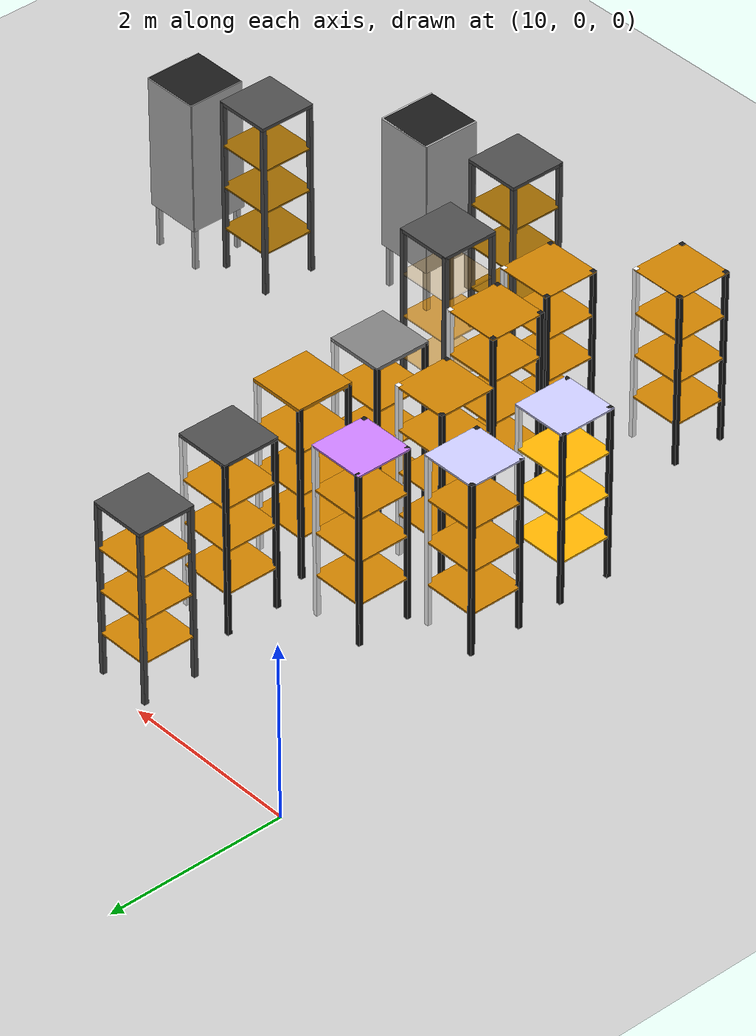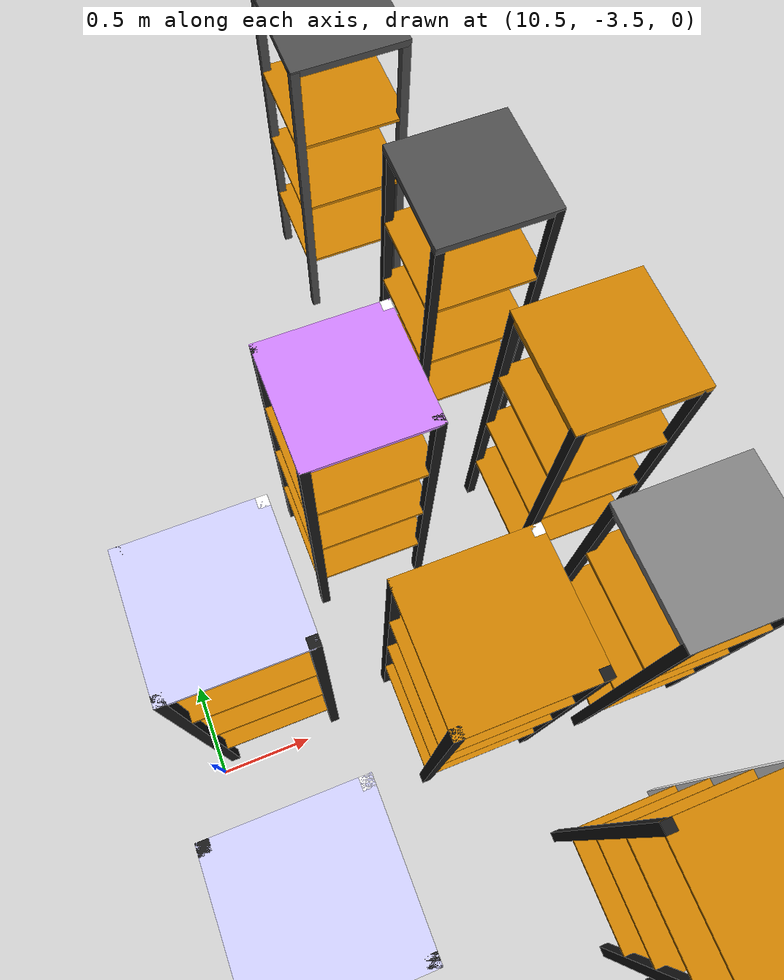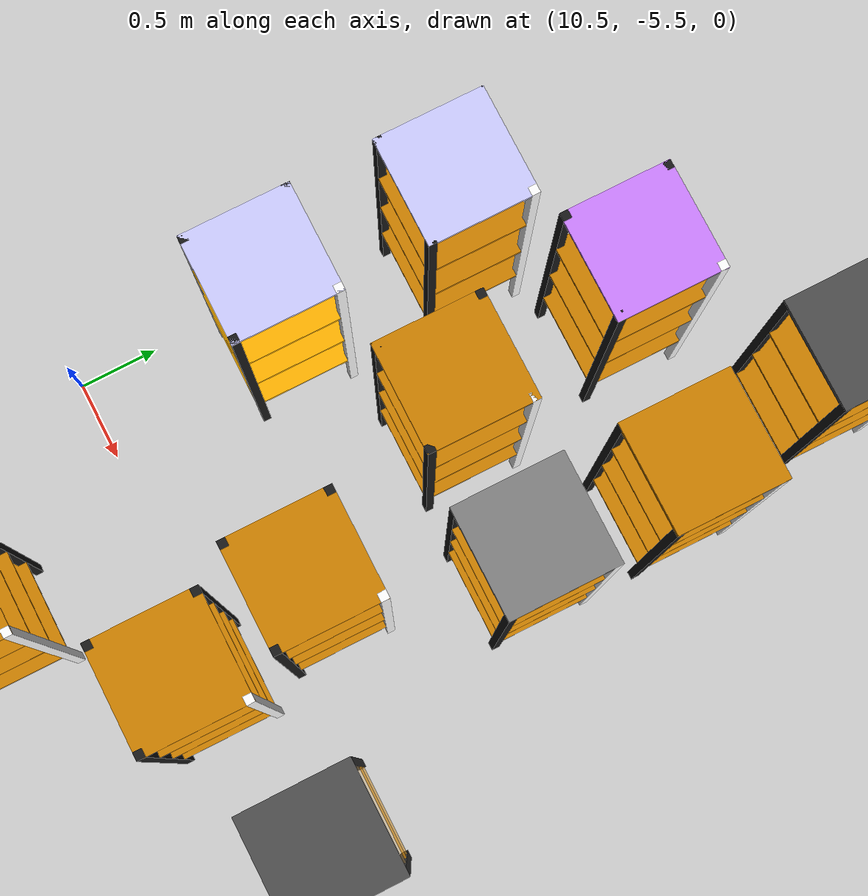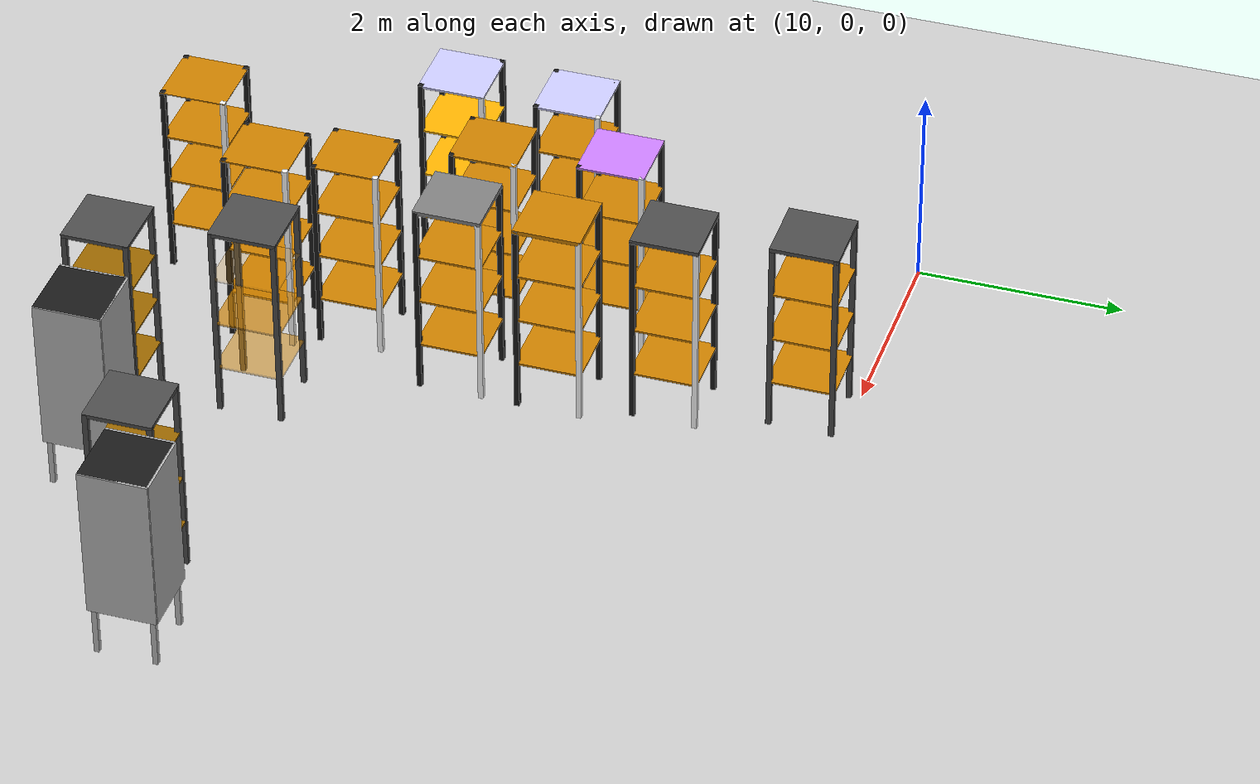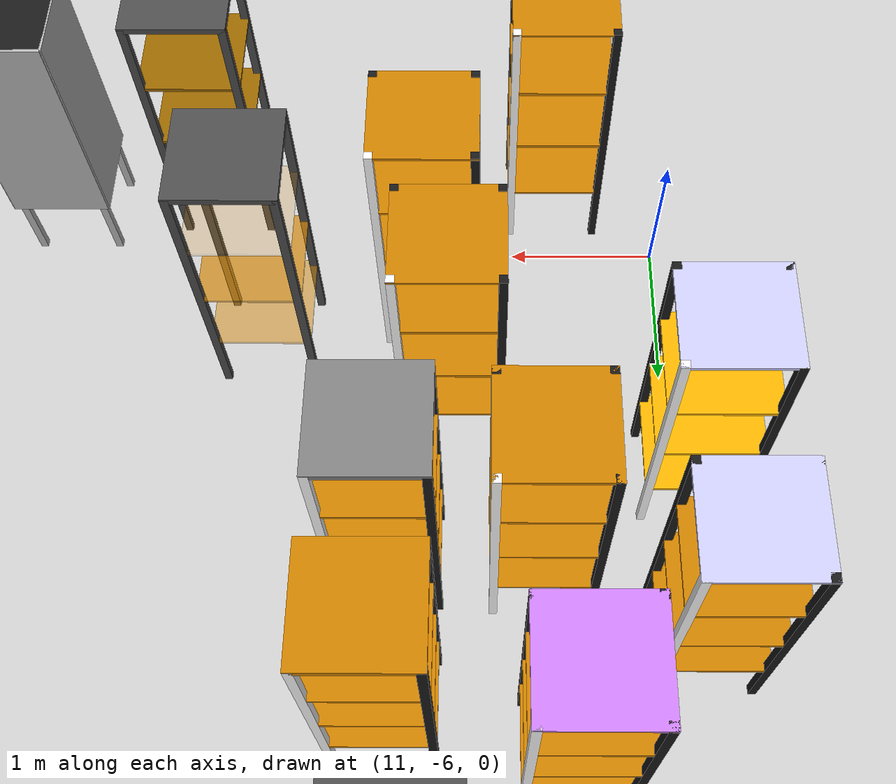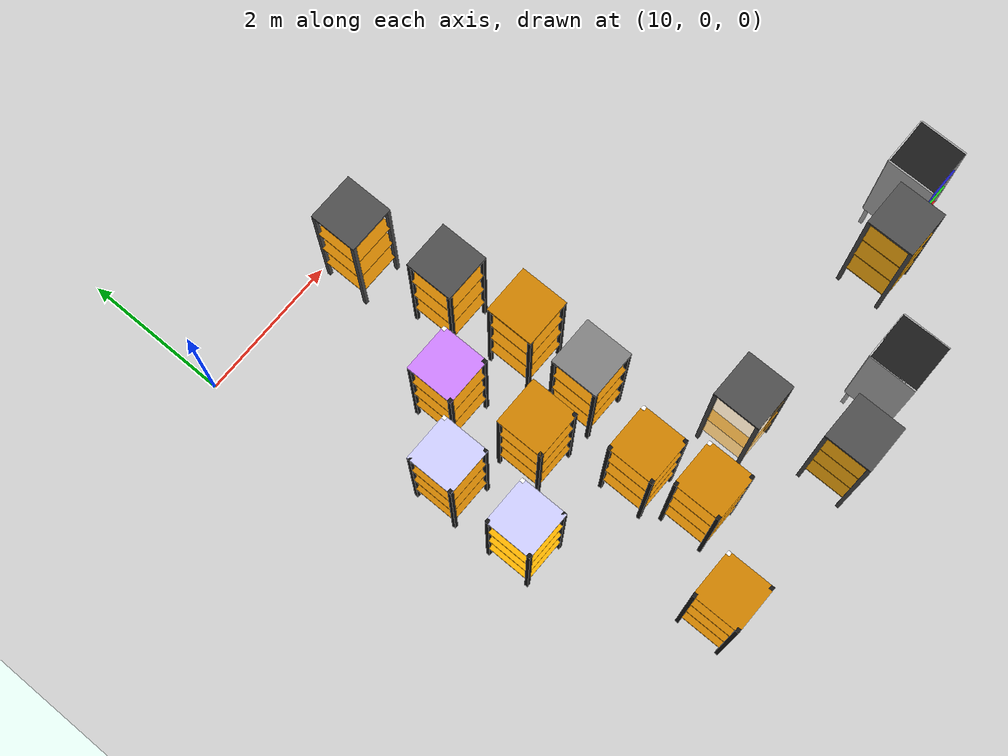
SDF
<sdf version="1.6">
 <world name="default">
  <model name="ground_plane">
   <static>1</static>
   <link name="link">
    <collision name="collision">
     <geometry><plane><normal>0 0 1</normal><size>50 50</size></plane></geometry>
     <surface><friction><ode><mu>100</mu><mu2>50</mu2></ode></friction></surface>
    </collision>
    <visual name="visual">
     <cast_shadows>0</cast_shadows>
     <geometry><plane><normal>0 0 1</normal><size>100 100</size></plane></geometry>
     <material>
      <script><uri>file://media/materials/scripts/gazebo.material</uri><name>Gazebo/Grey</name></script>
     </material>
    </visual>
    <velocity_decay><linear>0</linear><angular>0</angular></velocity_decay>
   </link>
  </model>
  <model name="warehouse_shelf_56">
   <static>1</static>
   <pose>10.889 -4.26653 0 0 -0 0</pose>
   <link name="main_block">
    <pose>0 0 1.25 0 -0 0</pose>
    <collision name="collision"><geometry><box><size>0.65 0.65 1.5</size></box></geometry></collision>
   </link>
   <link name="leg_1">
    <pose>0.3 0.3 1 0 -0 0</pose>
    <collision name="collision"><geometry><box><size>0.05 0.05 2</size></box></geometry></collision>
    <visual name="visual">
     <geometry><box><size>0.05 0.05 2</size></box></geometry>
     <material><ambient>0.1 0.1 0.1 1</ambient><diffuse>1 1 1 1</diffuse></material>
    </visual>
   </link>
   <link name="leg_2">
    <pose>-0.3 0.3 1 0 -0 0</pose>
    <collision name="collision"><geometry><box><size>0.05 0.05 2</size></box></geometry></collision>
    <visual name="visual">
     <geometry><box><size>0.05 0.05 2</size></box></geometry>
     <material><ambient>0.1 0.1 0.1 1</ambient></material>
    </visual>
   </link>
   <link name="leg_3">
    <pose>-0.3 -0.3 1 0 -0 0</pose>
    <collision name="collision"><geometry><box><size>0.05 0.05 2</size></box></geometry></collision>
    <visual name="visual">
     <geometry><box><size>0.05 0.05 2</size></box></geometry>
     <material><ambient>0.1 0.1 0.1 1</ambient></material>
    </visual>
   </link>
   <link name="leg_4">
    <pose>0.3 -0.3 1 0 -0 0</pose>
    <collision name="collision"><geometry><box><size>0.05 0.05 2</size></box></geometry></collision>
    <visual name="visual">
     <geometry><box><size>0.05 0.05 2</size></box></geometry>
     <material><ambient>0.1 0.1 0.1 1</ambient></material>
    </visual>
   </link>
   <link name="shelf_0">
    <pose>0 0 0.49 0 -0 0</pose>
    <visual name="visual">
     <geometry><box><size>0.649 0.649 0.02</size></box></geometry>
     <material><ambient>1 0.7 0 1</ambient><diffuse>1 0.7 0 1</diffuse></material>
    </visual>
   </link>
   <link name="shelf_1">
    <pose>0 0 0.99 0 -0 0</pose>
    <visual name="visual">
     <geometry><box><size>0.649 0.649 0.02</size></box></geometry>
     <material><ambient>1 0.7 0 1</ambient><diffuse>1 0.7 0 1</diffuse></material>
    </visual>
   </link>
   <link name="shelf_2">
    <pose>0 0 1.49 0 -0 0</pose>
    <visual name="visual">
     <geometry><box><size>0.649 0.649 0.02</size></box></geometry>
     <material><ambient>1 0.7 0 1</ambient><diffuse>1 0.7 0 1</diffuse></material>
    </visual>
   </link>
   <link name="shelf_top">
    <pose>0 0 1.99 0 -0 0</pose>
    <visual name="visual">
     <geometry><box><size>0.65 0.65 0.02</size></box></geometry>
     <material><ambient>0.8 0.8 1 1</ambient><diffuse>0.8 0.8 1 1</diffuse></material>
    </visual>
   </link>
  </model>
  <model name="warehouse_shelf_61">
   <static>1</static>
   <pose>10.8797 -3.13327 0 0 -0 0</pose>
   <link name="main_block">
    <pose>0 0 1.25 0 -0 0</pose>
    <collision name="collision"><geometry><box><size>0.65 0.65 1.5</size></box></geometry></collision>
   </link>
   <link name="leg_1">
    <pose>0.3 0.3 1 0 -0 0</pose>
    <collision name="collision"><geometry><box><size>0.05 0.05 2</size></box></geometry></collision>
    <visual name="visual">
     <geometry><box><size>0.05 0.05 2</size></box></geometry>
     <material><ambient>0.1 0.1 0.1 1</ambient><diffuse>1 1 1 1</diffuse></material>
    </visual>
   </link>
   <link name="leg_2">
    <pose>-0.3 0.3 1 0 -0 0</pose>
    <collision name="collision"><geometry><box><size>0.05 0.05 2</size></box></geometry></collision>
    <visual name="visual">
     <geometry><box><size>0.05 0.05 2</size></box></geometry>
     <material><ambient>0.1 0.1 0.1 1</ambient></material>
    </visual>
   </link>
   <link name="leg_3">
    <pose>-0.3 -0.3 1 0 -0 0</pose>
    <collision name="collision"><geometry><box><size>0.05 0.05 2</size></box></geometry></collision>
    <visual name="visual">
     <geometry><box><size>0.05 0.05 2</size></box></geometry>
     <material><ambient>0.1 0.1 0.1 1</ambient></material>
    </visual>
   </link>
   <link name="leg_4">
    <pose>0.3 -0.3 1 0 -0 0</pose>
    <collision name="collision"><geometry><box><size>0.05 0.05 2</size></box></geometry></collision>
    <visual name="visual">
     <geometry><box><size>0.05 0.05 2</size></box></geometry>
     <material><ambient>0.1 0.1 0.1 1</ambient></material>
    </visual>
   </link>
   <link name="shelf_0">
    <pose>0 0 0.49 0 -0 0</pose>
    <visual name="visual">
     <geometry><box><size>0.649 0.649 0.02</size></box></geometry>
     <material><ambient>0.2 0.05 0 1</ambient><diffuse>0.8 0.5 0 1</diffuse></material>
    </visual>
   </link>
   <link name="shelf_1">
    <pose>0 0 0.99 0 -0 0</pose>
    <visual name="visual">
     <geometry><box><size>0.649 0.649 0.02</size></box></geometry>
     <material><ambient>0.2 0.05 0 1</ambient><diffuse>0.8 0.5 0 1</diffuse></material>
    </visual>
   </link>
   <link name="shelf_2">
    <pose>0 0 1.49 0 -0 0</pose>
    <visual name="visual">
     <geometry><box><size>0.649 0.649 0.02</size></box></geometry>
     <material><ambient>0.2 0.05 0 1</ambient><diffuse>0.8 0.5 0 1</diffuse></material>
    </visual>
   </link>
   <link name="shelf_top">
    <pose>0 0 1.99 0 -0 0</pose>
    <visual name="visual">
     <geometry><box><size>0.65 0.65 0.02</size></box></geometry>
     <material><ambient>0.8 0.8 1 1</ambient><diffuse>0.8 0.8 1 1</diffuse></material>
    </visual>
   </link>
  </model>
  <model name="warehouse_shelf_62">
   <static>1</static>
   <pose>11.6756 -2.45291 0 0 -0 0</pose>
   <link name="main_block">
    <pose>0 0 1.25 0 -0 0</pose>
    <collision name="collision"><geometry><box><size>0.65 0.65 1.5</size></box></geometry></collision>
   </link>
   <link name="leg_1">
    <pose>0.3 0.3 1 0 -0 0</pose>
    <collision name="collision"><geometry><box><size>0.05 0.05 2</size></box></geometry></collision>
    <visual name="visual">
     <geometry><box><size>0.05 0.05 2</size></box></geometry>
     <material><ambient>0.1 0.1 0.1 1</ambient><diffuse>1 1 1 1</diffuse></material>
    </visual>
   </link>
   <link name="leg_2">
    <pose>-0.3 0.3 1 0 -0 0</pose>
    <collision name="collision"><geometry><box><size>0.05 0.05 2</size></box></geometry></collision>
    <visual name="visual">
     <geometry><box><size>0.05 0.05 2</size></box></geometry>
     <material><ambient>0.1 0.1 0.1 1</ambient></material>
    </visual>
   </link>
   <link name="leg_3">
    <pose>-0.3 -0.3 1 0 -0 0</pose>
    <collision name="collision"><geometry><box><size>0.05 0.05 2</size></box></geometry></collision>
    <visual name="visual">
     <geometry><box><size>0.05 0.05 2</size></box></geometry>
     <material><ambient>0.1 0.1 0.1 1</ambient></material>
    </visual>
   </link>
   <link name="leg_4">
    <pose>0.3 -0.3 1 0 -0 0</pose>
    <collision name="collision"><geometry><box><size>0.05 0.05 2</size></box></geometry></collision>
    <visual name="visual">
     <geometry><box><size>0.05 0.05 2</size></box></geometry>
     <material><ambient>0.1 0.1 0.1 1</ambient></material>
    </visual>
   </link>
   <link name="shelf_0">
    <pose>0 0 0.49 0 -0 0</pose>
    <visual name="visual">
     <geometry><box><size>0.649 0.649 0.02</size></box></geometry>
     <material><ambient>0.2 0.05 0 1</ambient><diffuse>0.8 0.5 0 1</diffuse></material>
    </visual>
   </link>
   <link name="shelf_1">
    <pose>0 0 0.99 0 -0 0</pose>
    <visual name="visual">
     <geometry><box><size>0.649 0.649 0.02</size></box></geometry>
     <material><ambient>0.2 0.05 0 1</ambient><diffuse>0.8 0.5 0 1</diffuse></material>
    </visual>
   </link>
   <link name="shelf_2">
    <pose>0 0 1.49 0 -0 0</pose>
    <visual name="visual">
     <geometry><box><size>0.649 0.649 0.02</size></box></geometry>
     <material><ambient>0.2 0.05 0 1</ambient><diffuse>0.8 0.5 0 1</diffuse></material>
    </visual>
   </link>
   <link name="shelf_top">
    <pose>0 0 1.99 0 -0 0</pose>
    <visual name="visual">
     <geometry><box><size>0.65 0.65 0.02</size></box></geometry>
     <material><ambient>0.2 0.05 1 1</ambient><diffuse>0.8 0.5 1 1</diffuse></material>
    </visual>
   </link>
  </model>
  <model name="warehouse_shelf_63">
   <static>1</static>
   <pose>11.8474 -3.63149 0 0 -0 0</pose>
   <link name="main_block">
    <pose>0 0 1.25 0 -0 0</pose>
    <collision name="collision"><geometry><box><size>0.65 0.65 1.5</size></box></geometry></collision>
   </link>
   <link name="leg_1">
    <pose>0.3 0.3 1 0 -0 0</pose>
    <collision name="collision"><geometry><box><size>0.05 0.05 2</size></box></geometry></collision>
    <visual name="visual">
     <geometry><box><size>0.05 0.05 2</size></box></geometry>
     <material><ambient>0.1 0.1 0.1 1</ambient><diffuse>1 1 1 1</diffuse></material>
    </visual>
   </link>
   <link name="leg_2">
    <pose>-0.3 0.3 1 0 -0 0</pose>
    <collision name="collision"><geometry><box><size>0.05 0.05 2</size></box></geometry></collision>
    <visual name="visual">
     <geometry><box><size>0.05 0.05 2</size></box></geometry>
     <material><ambient>0.1 0.1 0.1 1</ambient></material>
    </visual>
   </link>
   <link name="leg_3">
    <pose>-0.3 -0.3 1 0 -0 0</pose>
    <collision name="collision"><geometry><box><size>0.05 0.05 2</size></box></geometry></collision>
    <visual name="visual">
     <geometry><box><size>0.05 0.05 2</size></box></geometry>
     <material><ambient>0.1 0.1 0.1 1</ambient></material>
    </visual>
   </link>
   <link name="leg_4">
    <pose>0.3 -0.3 1 0 -0 0</pose>
    <collision name="collision"><geometry><box><size>0.05 0.05 2</size></box></geometry></collision>
    <visual name="visual">
     <geometry><box><size>0.05 0.05 2</size></box></geometry>
     <material><ambient>0.1 0.1 0.1 1</ambient></material>
    </visual>
   </link>
   <link name="shelf_0">
    <pose>0 0 0.49 0 -0 0</pose>
    <visual name="visual">
     <geometry><box><size>0.649 0.649 0.02</size></box></geometry>
     <material><ambient>0.2 0.05 0 1</ambient><diffuse>0.8 0.5 0 1</diffuse></material>
    </visual>
   </link>
   <link name="shelf_1">
    <pose>0 0 0.99 0 -0 0</pose>
    <visual name="visual">
     <geometry><box><size>0.649 0.649 0.02</size></box></geometry>
     <material><ambient>0.2 0.05 0 1</ambient><diffuse>0.8 0.5 0 1</diffuse></material>
    </visual>
   </link>
   <link name="shelf_2">
    <pose>0 0 1.49 0 -0 0</pose>
    <visual name="visual">
     <geometry><box><size>0.649 0.649 0.02</size></box></geometry>
     <material><ambient>0.2 0.05 0 1</ambient><diffuse>0.8 0.5 0 1</diffuse></material>
    </visual>
   </link>
   <link name="shelf_top">
    <pose>0 0 1.99 0 -0 0</pose>
    <visual name="visual">
     <geometry><box><size>0.65 0.65 0.02</size></box></geometry>
     <material><ambient>0.2 0.05 0 1</ambient><diffuse>0.8 0.5 0 1</diffuse></material>
    </visual>
   </link>
  </model>
  <model name="warehouse_shelf_64">
   <static>1</static>
   <pose>12.4062 -4.77712 0 0 -0 0</pose>
   <link name="main_block">
    <pose>0 0 1.25 0 -0 0</pose>
    <collision name="collision"><geometry><box><size>0.65 0.65 1.5</size></box></geometry></collision>
   </link>
   <link name="leg_1">
    <pose>0.3 0.3 1 0 -0 0</pose>
    <collision name="collision"><geometry><box><size>0.05 0.05 2</size></box></geometry></collision>
    <visual name="visual">
     <geometry><box><size>0.05 0.05 2</size></box></geometry>
     <material><ambient>0.1 0.1 0.1 1</ambient><diffuse>1 1 1 1</diffuse></material>
    </visual>
   </link>
   <link name="leg_2">
    <pose>-0.3 0.3 1 0 -0 0</pose>
    <collision name="collision"><geometry><box><size>0.05 0.05 2</size></box></geometry></collision>
    <visual name="visual">
     <geometry><box><size>0.05 0.05 2</size></box></geometry>
     <material><ambient>0.1 0.1 0.1 1</ambient></material>
    </visual>
   </link>
   <link name="leg_3">
    <pose>-0.3 -0.3 1 0 -0 0</pose>
    <collision name="collision"><geometry><box><size>0.05 0.05 2</size></box></geometry></collision>
    <visual name="visual">
     <geometry><box><size>0.05 0.05 2</size></box></geometry>
     <material><ambient>0.1 0.1 0.1 1</ambient></material>
    </visual>
   </link>
   <link name="leg_4">
    <pose>0.3 -0.3 1 0 -0 0</pose>
    <collision name="collision"><geometry><box><size>0.05 0.05 2</size></box></geometry></collision>
    <visual name="visual">
     <geometry><box><size>0.05 0.05 2</size></box></geometry>
     <material><ambient>0.1 0.1 0.1 1</ambient></material>
    </visual>
   </link>
   <link name="shelf_0">
    <pose>0 0 0.49 0 -0 0</pose>
    <visual name="visual">
     <geometry><box><size>0.649 0.649 0.02</size></box></geometry>
     <material><ambient>0.2 0.05 0 1</ambient><diffuse>0.8 0.5 0 1</diffuse></material>
    </visual>
   </link>
   <link name="shelf_1">
    <pose>0 0 0.99 0 -0 0</pose>
    <visual name="visual">
     <geometry><box><size>0.649 0.649 0.02</size></box></geometry>
     <material><ambient>0.2 0.05 0 1</ambient><diffuse>0.8 0.5 0 1</diffuse></material>
    </visual>
   </link>
   <link name="shelf_2">
    <pose>0 0 1.49 0 -0 0</pose>
    <visual name="visual">
     <geometry><box><size>0.649 0.649 0.02</size></box></geometry>
     <material><ambient>0.2 0.05 0 1</ambient><diffuse>0.8 0.5 0 1</diffuse></material>
    </visual>
   </link>
   <link name="shelf_top">
    <pose>0 0 1.99 0 -0 0</pose>
    <visual name="visual">
     <geometry><box><size>0.65 0.65 0.015</size></box></geometry>
     <material><ambient>0.2 0.05 0 1</ambient><diffuse>0.8 0.5 0 1</diffuse></material>
    </visual>
   </link>
  </model>
  <model name="warehouse_shelf_65">
   <static>1</static>
   <pose>12.5605 -5.60007 0 0 -0 0</pose>
   <link name="main_block">
    <pose>0 0 1.25 0 -0 0</pose>
    <collision name="collision"><geometry><box><size>0.65 0.65 1.5</size></box></geometry></collision>
   </link>
   <link name="leg_1">
    <pose>0.3 0.3 1 0 -0 0</pose>
    <collision name="collision"><geometry><box><size>0.05 0.05 2</size></box></geometry></collision>
    <visual name="visual">
     <geometry><box><size>0.05 0.05 2</size></box></geometry>
     <material><ambient>0.1 0.1 0.1 1</ambient><diffuse>1 1 1 1</diffuse></material>
    </visual>
   </link>
   <link name="leg_2">
    <pose>-0.3 0.3 1 0 -0 0</pose>
    <collision name="collision"><geometry><box><size>0.05 0.05 2</size></box></geometry></collision>
    <visual name="visual">
     <geometry><box><size>0.05 0.05 2</size></box></geometry>
     <material><ambient>0.1 0.1 0.1 1</ambient></material>
    </visual>
   </link>
   <link name="leg_3">
    <pose>-0.3 -0.3 1 0 -0 0</pose>
    <collision name="collision"><geometry><box><size>0.05 0.05 2</size></box></geometry></collision>
    <visual name="visual">
     <geometry><box><size>0.05 0.05 2</size></box></geometry>
     <material><ambient>0.1 0.1 0.1 1</ambient></material>
    </visual>
   </link>
   <link name="leg_4">
    <pose>0.3 -0.3 1 0 -0 0</pose>
    <collision name="collision"><geometry><box><size>0.05 0.05 2</size></box></geometry></collision>
    <visual name="visual">
     <geometry><box><size>0.05 0.05 2</size></box></geometry>
     <material><ambient>0.1 0.1 0.1 1</ambient></material>
    </visual>
   </link>
   <link name="shelf_0">
    <pose>0 0 0.49 0 -0 0</pose>
    <visual name="visual">
     <geometry><box><size>0.649 0.649 0.02</size></box></geometry>
     <material><ambient>0.2 0.05 0 1</ambient><diffuse>0.8 0.5 0 1</diffuse></material>
    </visual>
   </link>
   <link name="shelf_1">
    <pose>0 0 0.99 0 -0 0</pose>
    <visual name="visual">
     <geometry><box><size>0.649 0.649 0.02</size></box></geometry>
     <material><ambient>0.2 0.05 0 1</ambient><diffuse>0.8 0.5 0 1</diffuse></material>
    </visual>
   </link>
   <link name="shelf_2">
    <pose>0 0 1.49 0 -0 0</pose>
    <visual name="visual">
     <geometry><box><size>0.649 0.649 0.02</size></box></geometry>
     <material><ambient>0.2 0.05 0 1</ambient><diffuse>0.8 0.5 0 1</diffuse></material>
    </visual>
   </link>
   <link name="shelf_top">
    <pose>0 0 1.99 0 -0 0</pose>
    <visual name="visual">
     <geometry><box><size>0.65 0.65 0.015</size></box></geometry>
     <material><ambient>0.2 0.05 0 1</ambient><diffuse>0.8 0.5 0 1</diffuse></material>
    </visual>
   </link>
  </model>
  <model name="warehouse_shelf_66">
   <static>1</static>
   <pose>11.7167 -6.53004 0 0 -0 0</pose>
   <link name="main_block">
    <pose>0 0 1.25 0 -0 0</pose>
    <collision name="collision"><geometry><box><size>0.65 0.65 1.5</size></box></geometry></collision>
   </link>
   <link name="leg_1">
    <pose>0.3 0.3 1 0 -0 0</pose>
    <collision name="collision"><geometry><box><size>0.05 0.05 2</size></box></geometry></collision>
    <visual name="visual">
     <geometry><box><size>0.05 0.05 2</size></box></geometry>
     <material><ambient>0.1 0.1 0.1 1</ambient><diffuse>1 1 1 1</diffuse></material>
    </visual>
   </link>
   <link name="leg_2">
    <pose>-0.3 0.3 1 0 -0 0</pose>
    <collision name="collision"><geometry><box><size>0.05 0.05 2</size></box></geometry></collision>
    <visual name="visual">
     <geometry><box><size>0.05 0.05 2</size></box></geometry>
     <material><ambient>0.1 0.1 0.1 1</ambient></material>
    </visual>
   </link>
   <link name="leg_3">
    <pose>-0.3 -0.3 1 0 -0 0</pose>
    <collision name="collision"><geometry><box><size>0.05 0.05 2</size></box></geometry></collision>
    <visual name="visual">
     <geometry><box><size>0.05 0.05 2</size></box></geometry>
     <material><ambient>0.1 0.1 0.1 1</ambient></material>
    </visual>
   </link>
   <link name="leg_4">
    <pose>0.3 -0.3 1 0 -0 0</pose>
    <collision name="collision"><geometry><box><size>0.05 0.05 2</size></box></geometry></collision>
    <visual name="visual">
     <geometry><box><size>0.05 0.05 2</size></box></geometry>
     <material><ambient>0.1 0.1 0.1 1</ambient></material>
    </visual>
   </link>
   <link name="shelf_0">
    <pose>0 0 0.49 0 -0 0</pose>
    <visual name="visual">
     <geometry><box><size>0.649 0.649 0.02</size></box></geometry>
     <material><ambient>0.2 0.05 0 1</ambient><diffuse>0.8 0.5 0 1</diffuse></material>
    </visual>
   </link>
   <link name="shelf_1">
    <pose>0 0 0.99 0 -0 0</pose>
    <visual name="visual">
     <geometry><box><size>0.649 0.649 0.02</size></box></geometry>
     <material><ambient>0.2 0.05 0 1</ambient><diffuse>0.8 0.5 0 1</diffuse></material>
    </visual>
   </link>
   <link name="shelf_2">
    <pose>0 0 1.49 0 -0 0</pose>
    <visual name="visual">
     <geometry><box><size>0.649 0.649 0.02</size></box></geometry>
     <material><ambient>0.2 0.05 0 1</ambient><diffuse>0.8 0.5 0 1</diffuse></material>
    </visual>
   </link>
   <link name="shelf_top">
    <pose>0 0 1.99 0 -0 0</pose>
    <visual name="visual">
     <geometry><box><size>0.65 0.65 0.01</size></box></geometry>
     <material><ambient>0.2 0.05 0 1</ambient><diffuse>0.8 0.5 0 1</diffuse></material>
    </visual>
   </link>
  </model>
  <model name="warehouse_shelf_67">
   <static>1</static>
   <pose>12.7851 -2.70222 0 0 -0 0</pose>
   <link name="main_block">
    <pose>0 0 1.25 0 -0 0</pose>
    <collision name="collision"><geometry><box><size>0.65 0.65 1.5</size></box></geometry></collision>
   </link>
   <link name="leg_1">
    <pose>0.3 0.3 1 0 -0 0</pose>
    <collision name="collision"><geometry><box><size>0.05 0.05 2</size></box></geometry></collision>
    <visual name="visual">
     <geometry><box><size>0.05 0.05 2</size></box></geometry>
     <material><ambient>0.1 0.1 0.1 1</ambient><diffuse>1 1 1 1</diffuse></material>
    </visual>
   </link>
   <link name="leg_2">
    <pose>-0.3 0.3 1 0 -0 0</pose>
    <collision name="collision"><geometry><box><size>0.05 0.05 2</size></box></geometry></collision>
    <visual name="visual">
     <geometry><box><size>0.05 0.05 2</size></box></geometry>
     <material><ambient>0.1 0.1 0.1 1</ambient></material>
    </visual>
   </link>
   <link name="leg_3">
    <pose>-0.3 -0.3 1 0 -0 0</pose>
    <collision name="collision"><geometry><box><size>0.05 0.05 2</size></box></geometry></collision>
    <visual name="visual">
     <geometry><box><size>0.05 0.05 2</size></box></geometry>
     <material><ambient>0.1 0.1 0.1 1</ambient></material>
    </visual>
   </link>
   <link name="leg_4">
    <pose>0.3 -0.3 1 0 -0 0</pose>
    <collision name="collision"><geometry><box><size>0.05 0.05 2</size></box></geometry></collision>
    <visual name="visual">
     <geometry><box><size>0.05 0.05 2</size></box></geometry>
     <material><ambient>0.1 0.1 0.1 1</ambient></material>
    </visual>
   </link>
   <link name="shelf_0">
    <pose>0 0 0.49 0 -0 0</pose>
    <visual name="visual">
     <geometry><box><size>0.649 0.649 0.02</size></box></geometry>
     <material><ambient>0.2 0.05 0 1</ambient><diffuse>0.8 0.5 0 1</diffuse></material>
    </visual>
   </link>
   <link name="shelf_1">
    <pose>0 0 0.99 0 -0 0</pose>
    <visual name="visual">
     <geometry><box><size>0.649 0.649 0.02</size></box></geometry>
     <material><ambient>0.2 0.05 0 1</ambient><diffuse>0.8 0.5 0 1</diffuse></material>
    </visual>
   </link>
   <link name="shelf_2">
    <pose>0 0 1.49 0 -0 0</pose>
    <visual name="visual">
     <geometry><box><size>0.649 0.649 0.02</size></box></geometry>
     <material><ambient>0.2 0.05 0 1</ambient><diffuse>0.8 0.5 0 1</diffuse></material>
    </visual>
   </link>
   <link name="shelf_top">
    <pose>0 0 1.99 0 -0 0</pose>
    <visual name="visual">
     <geometry><box><size>0.65 0.65 0.04</size></box></geometry>
     <material><ambient>0.2 0.05 0 1</ambient><diffuse>0.8 0.5 0 1</diffuse></material>
    </visual>
   </link>
  </model>
  <model name="warehouse_shelf_68">
   <static>1</static>
   <pose>12.7832 -3.65707 0 0 -0 0</pose>
   <link name="main_block">
    <pose>0 0 1.25 0 -0 0</pose>
    <collision name="collision"><geometry><box><size>0.65 0.65 1.5</size></box></geometry></collision>
   </link>
   <link name="leg_1">
    <pose>0.3 0.3 1 0 -0 0</pose>
    <collision name="collision"><geometry><box><size>0.05 0.05 2</size></box></geometry></collision>
    <visual name="visual">
     <geometry><box><size>0.05 0.05 2</size></box></geometry>
     <material><ambient>0.1 0.1 0.1 1</ambient><diffuse>1 1 1 1</diffuse></material>
    </visual>
   </link>
   <link name="leg_2">
    <pose>-0.3 0.3 1 0 -0 0</pose>
    <collision name="collision"><geometry><box><size>0.05 0.05 2</size></box></geometry></collision>
    <visual name="visual">
     <geometry><box><size>0.05 0.05 2</size></box></geometry>
     <material><ambient>0.1 0.1 0.1 1</ambient></material>
    </visual>
   </link>
   <link name="leg_3">
    <pose>-0.3 -0.3 1 0 -0 0</pose>
    <collision name="collision"><geometry><box><size>0.05 0.05 2</size></box></geometry></collision>
    <visual name="visual">
     <geometry><box><size>0.05 0.05 2</size></box></geometry>
     <material><ambient>0.1 0.1 0.1 1</ambient></material>
    </visual>
   </link>
   <link name="leg_4">
    <pose>0.3 -0.3 1 0 -0 0</pose>
    <collision name="collision"><geometry><box><size>0.05 0.05 2</size></box></geometry></collision>
    <visual name="visual">
     <geometry><box><size>0.05 0.05 2</size></box></geometry>
     <material><ambient>0.1 0.1 0.1 1</ambient></material>
    </visual>
   </link>
   <link name="shelf_0">
    <pose>0 0 0.49 0 -0 0</pose>
    <visual name="visual">
     <geometry><box><size>0.649 0.649 0.02</size></box></geometry>
     <material><ambient>0.2 0.05 0 1</ambient><diffuse>0.8 0.5 0 1</diffuse></material>
    </visual>
   </link>
   <link name="shelf_1">
    <pose>0 0 0.99 0 -0 0</pose>
    <visual name="visual">
     <geometry><box><size>0.649 0.649 0.02</size></box></geometry>
     <material><ambient>0.2 0.05 0 1</ambient><diffuse>0.8 0.5 0 1</diffuse></material>
    </visual>
   </link>
   <link name="shelf_2">
    <pose>0 0 1.49 0 -0 0</pose>
    <visual name="visual">
     <geometry><box><size>0.649 0.649 0.02</size></box></geometry>
     <material><ambient>0.2 0.05 0 1</ambient><diffuse>0.8 0.5 0 1</diffuse></material>
    </visual>
   </link>
   <link name="shelf_top">
    <pose>0 0 1.99 0 -0 0</pose>
    <visual name="visual">
     <geometry><box><size>0.65 0.65 0.04</size></box></geometry>
     <material><ambient>0.5 0.5 0.5 1</ambient><diffuse>0.5 0.5 0.5 1</diffuse></material>
    </visual>
   </link>
  </model>
  <model name="warehouse_shelf_69">
   <static>1</static>
   <pose>12.6067 -1.64517 0 0 -0 0</pose>
   <link name="main_block">
    <pose>0 0 1.25 0 -0 0</pose>
    <collision name="collision"><geometry><box><size>0.65 0.65 1.5</size></box></geometry></collision>
   </link>
   <link name="leg_1">
    <pose>0.3 0.3 1 0 -0 0</pose>
    <collision name="collision"><geometry><box><size>0.05 0.05 2</size></box></geometry></collision>
    <visual name="visual">
     <geometry><box><size>0.05 0.05 2</size></box></geometry>
     <material><ambient>0.1 0.1 0.1 1</ambient><diffuse>1 1 1 1</diffuse></material>
    </visual>
   </link>
   <link name="leg_2">
    <pose>-0.3 0.3 1 0 -0 0</pose>
    <collision name="collision"><geometry><box><size>0.05 0.05 2</size></box></geometry></collision>
    <visual name="visual">
     <geometry><box><size>0.05 0.05 2</size></box></geometry>
     <material><ambient>0.1 0.1 0.1 1</ambient></material>
    </visual>
   </link>
   <link name="leg_3">
    <pose>-0.3 -0.3 1 0 -0 0</pose>
    <collision name="collision"><geometry><box><size>0.05 0.05 2</size></box></geometry></collision>
    <visual name="visual">
     <geometry><box><size>0.05 0.05 2</size></box></geometry>
     <material><ambient>0.1 0.1 0.1 1</ambient></material>
    </visual>
   </link>
   <link name="leg_4">
    <pose>0.3 -0.3 1 0 -0 0</pose>
    <collision name="collision"><geometry><box><size>0.05 0.05 2</size></box></geometry></collision>
    <visual name="visual">
     <geometry><box><size>0.05 0.05 2</size></box></geometry>
     <material><ambient>0.1 0.1 0.1 1</ambient></material>
    </visual>
   </link>
   <link name="shelf_0">
    <pose>0 0 0.49 0 -0 0</pose>
    <visual name="visual">
     <geometry><box><size>0.649 0.649 0.02</size></box></geometry>
     <material><ambient>0.2 0.05 0 1</ambient><diffuse>0.8 0.5 0 1</diffuse></material>
    </visual>
   </link>
   <link name="shelf_1">
    <pose>0 0 0.99 0 -0 0</pose>
    <visual name="visual">
     <geometry><box><size>0.649 0.649 0.02</size></box></geometry>
     <material><ambient>0.2 0.05 0 1</ambient><diffuse>0.8 0.5 0 1</diffuse></material>
    </visual>
   </link>
   <link name="shelf_2">
    <pose>0 0 1.49 0 -0 0</pose>
    <visual name="visual">
     <geometry><box><size>0.649 0.649 0.02</size></box></geometry>
     <material><ambient>0.2 0.05 0 1</ambient><diffuse>0.8 0.5 0 1</diffuse></material>
    </visual>
   </link>
   <link name="shelf_top">
    <pose>0 0 1.99 0 -0 0</pose>
    <visual name="visual">
     <geometry><box><size>0.65 0.65 0.04</size></box></geometry>
     <material><ambient>0.2 0.2 0.2 1</ambient><diffuse>0.3 0.3 0.3 1</diffuse></material>
    </visual>
   </link>
  </model>
  <model name="warehouse_shelf_70">
   <static>1</static>
   <pose>12.3445 -0.41312 0 0 -0 0</pose>
   <link name="main_block">
    <pose>0 0 1.25 0 -0 0</pose>
    <collision name="collision"><geometry><box><size>0.65 0.65 1.5</size></box></geometry></collision>
   </link>
   <link name="leg_1">
    <pose>0.3 0.3 1 0 -0 0</pose>
    <collision name="collision"><geometry><box><size>0.05 0.05 2</size></box></geometry></collision>
    <visual name="visual">
     <geometry><box><size>0.05 0.05 2</size></box></geometry>
     <material><ambient>0.2 0.2 0.2 1</ambient><diffuse>0.3 0.3 0.3 1</diffuse></material>
    </visual>
   </link>
   <link name="leg_2">
    <pose>-0.3 0.3 1 0 -0 0</pose>
    <collision name="collision"><geometry><box><size>0.05 0.05 2</size></box></geometry></collision>
    <visual name="visual">
     <geometry><box><size>0.05 0.05 2</size></box></geometry>
     <material><ambient>0.2 0.2 0.2 1</ambient><diffuse>0.3 0.3 0.3 1</diffuse></material>
    </visual>
   </link>
   <link name="leg_3">
    <pose>-0.3 -0.3 1 0 -0 0</pose>
    <collision name="collision"><geometry><box><size>0.05 0.05 2</size></box></geometry></collision>
    <visual name="visual">
     <geometry><box><size>0.05 0.05 2</size></box></geometry>
     <material><ambient>0.2 0.2 0.2 1</ambient><diffuse>0.3 0.3 0.3 1</diffuse></material>
    </visual>
   </link>
   <link name="leg_4">
    <pose>0.3 -0.3 1 0 -0 0</pose>
    <collision name="collision"><geometry><box><size>0.05 0.05 2</size></box></geometry></collision>
    <visual name="visual">
     <geometry><box><size>0.05 0.05 2</size></box></geometry>
     <material><ambient>0.2 0.2 0.2 1</ambient><diffuse>0.3 0.3 0.3 1</diffuse></material>
    </visual>
   </link>
   <link name="shelf_0">
    <pose>0 0 0.49 0 -0 0</pose>
    <visual name="visual">
     <geometry><box><size>0.649 0.649 0.02</size></box></geometry>
     <material><ambient>0.2 0.05 0 1</ambient><diffuse>0.8 0.5 0 1</diffuse></material>
    </visual>
   </link>
   <link name="shelf_1">
    <pose>0 0 0.99 0 -0 0</pose>
    <visual name="visual">
     <geometry><box><size>0.649 0.649 0.02</size></box></geometry>
     <material><ambient>0.2 0.05 0 1</ambient><diffuse>0.8 0.5 0 1</diffuse></material>
    </visual>
   </link>
   <link name="shelf_2">
    <pose>0 0 1.49 0 -0 0</pose>
    <visual name="visual">
     <geometry><box><size>0.649 0.649 0.02</size></box></geometry>
     <material><ambient>0.2 0.05 0 1</ambient><diffuse>0.8 0.5 0 1</diffuse></material>
    </visual>
   </link>
   <link name="shelf_top">
    <pose>0 0 1.99 0 -0 0</pose>
    <visual name="visual">
     <geometry><box><size>0.65 0.65 0.04</size></box></geometry>
     <material><ambient>0.2 0.2 0.2 1</ambient><diffuse>0.3 0.3 0.3 1</diffuse></material>
    </visual>
   </link>
  </model>
  <model name="warehouse_shelf_71">
   <static>1</static>
   <pose>13.6619 -5.30194 0 0 -0 0</pose>
   <link name="main_block">
    <pose>0 0 1.25 0 -0 0</pose>
    <collision name="collision"><geometry><box><size>0.65 0.65 1.5</size></box></geometry></collision>
   </link>
   <link name="leg_1">
    <pose>0.3 0.3 1 0 -0 0</pose>
    <collision name="collision"><geometry><box><size>0.05 0.05 2</size></box></geometry></collision>
    <visual name="visual">
     <geometry><box><size>0.05 0.05 2</size></box></geometry>
     <material><ambient>0.2 0.2 0.2 1</ambient><diffuse>0.3 0.3 0.3 1</diffuse></material>
    </visual>
   </link>
   <link name="leg_2">
    <pose>-0.3 0.3 1 0 -0 0</pose>
    <collision name="collision"><geometry><box><size>0.05 0.05 2</size></box></geometry></collision>
    <visual name="visual">
     <geometry><box><size>0.05 0.05 2</size></box></geometry>
     <material><ambient>0.2 0.2 0.2 1</ambient><diffuse>0.3 0.3 0.3 1</diffuse></material>
    </visual>
   </link>
   <link name="leg_3">
    <pose>-0.3 -0.3 1 0 -0 0</pose>
    <collision name="collision"><geometry><box><size>0.05 0.05 2</size></box></geometry></collision>
    <visual name="visual">
     <geometry><box><size>0.05 0.05 2</size></box></geometry>
     <material><ambient>0.2 0.2 0.2 1</ambient><diffuse>0.3 0.3 0.3 1</diffuse></material>
    </visual>
   </link>
   <link name="leg_4">
    <pose>0.3 -0.3 1 0 -0 0</pose>
    <collision name="collision"><geometry><box><size>0.05 0.05 2</size></box></geometry></collision>
    <visual name="visual">
     <geometry><box><size>0.05 0.05 2</size></box></geometry>
     <material><ambient>0.2 0.2 0.2 1</ambient><diffuse>0.3 0.3 0.3 1</diffuse></material>
    </visual>
   </link>
   <link name="shelf_0">
    <pose>0 0 0.49 0 -0 0</pose>
    <visual name="visual">
     <geometry><box><size>0.649 0.649 0.02</size></box></geometry>
     <material><ambient>0.2 0.05 0 1</ambient><diffuse>0.8 0.5 0 0.5</diffuse></material>
    </visual>
   </link>
   <link name="shelf_1">
    <pose>0 0 0.99 0 -0 0</pose>
    <visual name="visual">
     <geometry><box><size>0.649 0.649 0.02</size></box></geometry>
     <material><ambient>0.2 0.05 0 1</ambient><diffuse>0.8 0.5 0 0.7</diffuse></material>
    </visual>
   </link>
   <link name="shelf_2">
    <pose>0 0 1.49 0 -0 0</pose>
    <visual name="visual">
     <geometry><box><size>0.649 0.649 0.02</size></box></geometry>
     <material><ambient>0.2 0.05 0 1</ambient><diffuse>0.8 0.5 0 0.2</diffuse></material>
    </visual>
   </link>
   <link name="shelf_top">
    <pose>0 0 1.99 0 -0 0</pose>
    <visual name="visual">
     <geometry><box><size>0.65 0.65 0.04</size></box></geometry>
     <material><ambient>0.2 0.2 0.2 1</ambient><diffuse>0.3 0.3 0.3 1</diffuse></material>
    </visual>
   </link>
  </model>
  <model name="warehouse_shelf_72">
   <static>1</static>
   <pose>14.0761 -6.55662 0 0 -0 0</pose>
   <link name="main_block">
    <pose>0 0 1.25 0 -0 0</pose>
    <collision name="collision"><geometry><box><size>0.65 0.65 1.5</size></box></geometry></collision>
   </link>
   <link name="leg_1">
    <pose>0.3 0.3 1 0 -0 0</pose>
    <collision name="collision"><geometry><box><size>0.05 0.05 2</size></box></geometry></collision>
    <visual name="visual">
     <geometry><box><size>0.05 0.05 2</size></box></geometry>
     <material><ambient>0.2 0.2 0.2 1</ambient><diffuse>0.3 0.3 0.3 1</diffuse></material>
    </visual>
   </link>
   <link name="leg_2">
    <pose>-0.3 0.3 1 0 -0 0</pose>
    <collision name="collision"><geometry><box><size>0.05 0.05 2</size></box></geometry></collision>
    <visual name="visual">
     <geometry><box><size>0.05 0.05 2</size></box></geometry>
     <material><ambient>0.2 0.2 0.2 1</ambient><diffuse>0.3 0.3 0.3 1</diffuse></material>
    </visual>
   </link>
   <link name="leg_3">
    <pose>-0.3 -0.3 1 0 -0 0</pose>
    <collision name="collision"><geometry><box><size>0.05 0.05 2</size></box></geometry></collision>
    <visual name="visual">
     <geometry><box><size>0.05 0.05 2</size></box></geometry>
     <material><ambient>0.2 0.2 0.2 1</ambient><diffuse>0.3 0.3 0.3 1</diffuse></material>
    </visual>
   </link>
   <link name="leg_4">
    <pose>0.3 -0.3 1 0 -0 0</pose>
    <collision name="collision"><geometry><box><size>0.05 0.05 2</size></box></geometry></collision>
    <visual name="visual">
     <geometry><box><size>0.05 0.05 2</size></box></geometry>
     <material><ambient>0.2 0.2 0.2 1</ambient><diffuse>0.3 0.3 0.3 1</diffuse></material>
    </visual>
   </link>
   <link name="shelf_0">
    <pose>0 0 0.49 0 -0 0</pose>
    <visual name="visual">
     <geometry><box><size>0.649 0.649 0.02</size></box></geometry>
     <material><ambient>0.2 0.05 0 1</ambient><diffuse>0.6 0.4 0 1</diffuse></material>
    </visual>
   </link>
   <link name="shelf_1">
    <pose>0 0 0.99 0 -0 0</pose>
    <visual name="visual">
     <geometry><box><size>0.649 0.649 0.02</size></box></geometry>
     <material><ambient>0.2 0.05 0 1</ambient><diffuse>0.6 0.4 0 1</diffuse></material>
    </visual>
   </link>
   <link name="shelf_2">
    <pose>0 0 1.49 0 -0 0</pose>
    <visual name="visual">
     <geometry><box><size>0.649 0.649 0.02</size></box></geometry>
     <material><ambient>0.2 0.05 0 1</ambient><diffuse>0.6 0.4 0 1</diffuse></material>
    </visual>
   </link>
   <link name="shelf_top">
    <pose>0 0 1.99 0 -0 0</pose>
    <visual name="visual">
     <geometry><box><size>0.65 0.65 0.04</size></box></geometry>
     <material><ambient>0.2 0.2 0.2 1</ambient><diffuse>0.3 0.3 0.3 1</diffuse></material>
    </visual>
   </link>
  </model>
  <model name="warehouse_shelf_73">
   <static>1</static>
   <pose>15.1486 -6.3863 0 0 -0 0</pose>
   <link name="main_block">
    <pose>0 0 1.255 0 -0 0</pose>
    <collision name="collision"><geometry><box><size>0.65 0.65 1.51</size></box></geometry></collision>
   </link>
   <link name="leg_1">
    <pose>0.275 0.275 0.25 0 -0 0</pose>
    <collision name="collision"><geometry><box><size>0.05 0.05 0.5</size></box></geometry></collision>
    <visual name="visual"><geometry><box><size>0.05 0.05 0.5</size></box></geometry></visual>
   </link>
   <link name="leg_2">
    <pose>-0.275 0.275 0.25 0 -0 0</pose>
    <collision name="collision"><geometry><box><size>0.05 0.05 0.5</size></box></geometry></collision>
    <visual name="visual"><geometry><box><size>0.05 0.05 0.5</size></box></geometry></visual>
   </link>
   <link name="leg_3">
    <pose>-0.275 -0.275 0.25 0 -0 0</pose>
    <collision name="collision"><geometry><box><size>0.05 0.05 0.5</size></box></geometry></collision>
    <visual name="visual"><geometry><box><size>0.05 0.05 0.5</size></box></geometry></visual>
   </link>
   <link name="leg_4">
    <pose>0.275 -0.275 0.25 0 -0 0</pose>
    <collision name="collision"><geometry><box><size>0.05 0.05 0.5</size></box></geometry></collision>
    <visual name="visual"><geometry><box><size>0.05 0.05 0.5</size></box></geometry></visual>
   </link>
   <link name="shelf_0">
    <pose>0 0 0.5 0 -0 0</pose>
    <visual name="visual">
     <geometry><box><size>0.648 0.648 0.02</size></box></geometry>
     <material><ambient>0.75 0.1 0.1 1</ambient><diffuse>0.75 0.1 0.1 1</diffuse></material>
    </visual>
   </link>
   <link name="shelf_1">
    <pose>0 0 1 0 -0 0</pose>
    <visual name="visual">
     <geometry><box><size>0.648 0.648 0.02</size></box></geometry>
     <material><ambient>0.1 0.75 0.1 1</ambient><diffuse>0.1 0.75 0.1 1</diffuse></material>
    </visual>
   </link>
   <link name="shelf_2">
    <pose>0 0 1.5 0 -0 0</pose>
    <visual name="visual">
     <geometry><box><size>0.648 0.648 0.02</size></box></geometry>
     <material><ambient>0.1 0.1 0.75 1</ambient><diffuse>0.1 0.1 0.75 1</diffuse></material>
    </visual>
   </link>
   <link name="shelf_top">
    <pose>0 0 2 0 -0 0</pose>
    <visual name="visual">
     <geometry><box><size>0.648 0.648 0.02</size></box></geometry>
     <material><ambient>0.1 0.1 0.1 1</ambient><diffuse>0.1 0.1 0.1 1</diffuse></material>
    </visual>
   </link>
   <link name="side_left">
    <pose>0.324 0 1.25 0 -0 0</pose>
    <visual name="visual"><geometry><box><size>0.02 0.65 1.52</size></box></geometry></visual>
   </link>
   <link name="side_right">
    <pose>-0.324 0 1.25 0 -0 0</pose>
    <visual name="visual"><geometry><box><size>0.02 0.65 1.52</size></box></geometry></visual>
   </link>
   <link name="side_back">
    <pose>0 0.324 1.25 0 -0 0</pose>
    <visual name="visual"><geometry><box><size>0.65 0.02 1.52</size></box></geometry></visual>
   </link>
  </model>
  <model name="warehouse_shelf_74">
   <static>1</static>
   <pose>16.4303 -5.39184 0 0 -0 0</pose>
   <link name="main_block">
    <pose>0 0 1.25 0 -0 0</pose>
    <collision name="collision"><geometry><box><size>0.65 0.65 1.5</size></box></geometry></collision>
   </link>
   <link name="leg_1">
    <pose>0.3 0.3 1 0 -0 0</pose>
    <collision name="collision"><geometry><box><size>0.05 0.05 2</size></box></geometry></collision>
    <visual name="visual">
     <geometry><box><size>0.05 0.05 2</size></box></geometry>
     <material><ambient>0.2 0.2 0.2 1</ambient><diffuse>0.3 0.3 0.3 1</diffuse></material>
    </visual>
   </link>
   <link name="leg_2">
    <pose>-0.3 0.3 1 0 -0 0</pose>
    <collision name="collision"><geometry><box><size>0.05 0.05 2</size></box></geometry></collision>
    <visual name="visual">
     <geometry><box><size>0.05 0.05 2</size></box></geometry>
     <material><ambient>0.2 0.2 0.2 1</ambient><diffuse>0.3 0.3 0.3 1</diffuse></material>
    </visual>
   </link>
   <link name="leg_3">
    <pose>-0.3 -0.3 1 0 -0 0</pose>
    <collision name="collision"><geometry><box><size>0.05 0.05 2</size></box></geometry></collision>
    <visual name="visual">
     <geometry><box><size>0.05 0.05 2</size></box></geometry>
     <material><ambient>0.2 0.2 0.2 1</ambient><diffuse>0.3 0.3 0.3 1</diffuse></material>
    </visual>
   </link>
   <link name="leg_4">
    <pose>0.3 -0.3 1 0 -0 0</pose>
    <collision name="collision"><geometry><box><size>0.05 0.05 2</size></box></geometry></collision>
    <visual name="visual">
     <geometry><box><size>0.05 0.05 2</size></box></geometry>
     <material><ambient>0.2 0.2 0.2 1</ambient><diffuse>0.3 0.3 0.3 1</diffuse></material>
    </visual>
   </link>
   <link name="shelf_0">
    <pose>0 0 0.49 0 -0 0</pose>
    <visual name="visual">
     <geometry><box><size>0.649 0.649 0.02</size></box></geometry>
     <material><ambient>0.2 0.05 0 1</ambient><diffuse>0.6 0.4 0 1</diffuse></material>
    </visual>
   </link>
   <link name="shelf_1">
    <pose>0 0 0.99 0 -0 0</pose>
    <visual name="visual">
     <geometry><box><size>0.649 0.649 0.02</size></box></geometry>
     <material><ambient>0.2 0.05 0 1</ambient><diffuse>0.6 0.4 0 1</diffuse></material>
    </visual>
   </link>
   <link name="shelf_2">
    <pose>0 0 1.49 0 -0 0</pose>
    <visual name="visual">
     <geometry><box><size>0.649 0.649 0.02</size></box></geometry>
     <material><ambient>0.2 0.05 0 1</ambient><diffuse>0.6 0.4 0 1</diffuse></material>
    </visual>
   </link>
   <link name="shelf_top">
    <pose>0 0 1.99 0 -0 0</pose>
    <visual name="visual">
     <geometry><box><size>0.65 0.65 0.04</size></box></geometry>
     <material><ambient>0.2 0.2 0.2 1</ambient><diffuse>0.3 0.3 0.3 1</diffuse></material>
    </visual>
   </link>
  </model>
  <model name="cabinet_shelf">
   <static>1</static>
   <pose>17.1991 -5.12481 0 0 -0 0</pose>
   <link name="main_block">
    <pose>0 0 1.255 0 -0 0</pose>
    <collision name="collision"><geometry><box><size>0.65 0.65 1.51</size></box></geometry></collision>
   </link>
   <link name="leg_1">
    <pose>0.275 0.275 0.25 0 -0 0</pose>
    <collision name="collision"><geometry><box><size>0.05 0.05 0.5</size></box></geometry></collision>
    <visual name="visual"><geometry><box><size>0.05 0.05 0.5</size></box></geometry></visual>
   </link>
   <link name="leg_2">
    <pose>-0.275 0.275 0.25 0 -0 0</pose>
    <collision name="collision"><geometry><box><size>0.05 0.05 0.5</size></box></geometry></collision>
    <visual name="visual"><geometry><box><size>0.05 0.05 0.5</size></box></geometry></visual>
   </link>
   <link name="leg_3">
    <pose>-0.275 -0.275 0.25 0 -0 0</pose>
    <collision name="collision"><geometry><box><size>0.05 0.05 0.5</size></box></geometry></collision>
    <visual name="visual"><geometry><box><size>0.05 0.05 0.5</size></box></geometry></visual>
   </link>
   <link name="leg_4">
    <pose>0.275 -0.275 0.25 0 -0 0</pose>
    <collision name="collision"><geometry><box><size>0.05 0.05 0.5</size></box></geometry></collision>
    <visual name="visual"><geometry><box><size>0.05 0.05 0.5</size></box></geometry></visual>
   </link>
   <link name="shelf_0">
    <pose>0 0 0.5 0 -0 0</pose>
    <visual name="visual">
     <geometry><box><size>0.648 0.648 0.02</size></box></geometry>
     <material><ambient>0.75 0.1 0.1 1</ambient><diffuse>0.75 0.1 0.1 1</diffuse></material>
    </visual>
   </link>
   <link name="shelf_1">
    <pose>0 0 1 0 -0 0</pose>
    <visual name="visual">
     <geometry><box><size>0.648 0.648 0.02</size></box></geometry>
     <material><ambient>0.1 0.75 0.1 1</ambient><diffuse>0.1 0.75 0.1 1</diffuse></material>
    </visual>
   </link>
   <link name="shelf_2">
    <pose>0 0 1.5 0 -0 0</pose>
    <visual name="visual">
     <geometry><box><size>0.648 0.648 0.02</size></box></geometry>
     <material><ambient>0.1 0.1 0.75 1</ambient><diffuse>0.1 0.1 0.75 1</diffuse></material>
    </visual>
   </link>
   <link name="shelf_top">
    <pose>0 0 2 0 -0 0</pose>
    <visual name="visual">
     <geometry><box><size>0.648 0.648 0.02</size></box></geometry>
     <material><ambient>0.1 0.1 0.1 1</ambient><diffuse>0.1 0.1 0.1 1</diffuse></material>
    </visual>
   </link>
   <link name="side_left">
    <pose>0.324 0 1.25 0 -0 0</pose>
    <visual name="visual"><geometry><box><size>0.02 0.65 1.52</size></box></geometry></visual>
   </link>
   <link name="side_right">
    <pose>-0.324 0 1.25 0 -0 0</pose>
    <visual name="visual"><geometry><box><size>0.02 0.65 1.52</size></box></geometry></visual>
   </link>
   <link name="side_back">
    <pose>0 0.324 1.25 0 -0 0</pose>
    <visual name="visual"><geometry><box><size>0.65 0.02 1.52</size></box></geometry></visual>
   </link>
  </model>
 </world>
</sdf>
